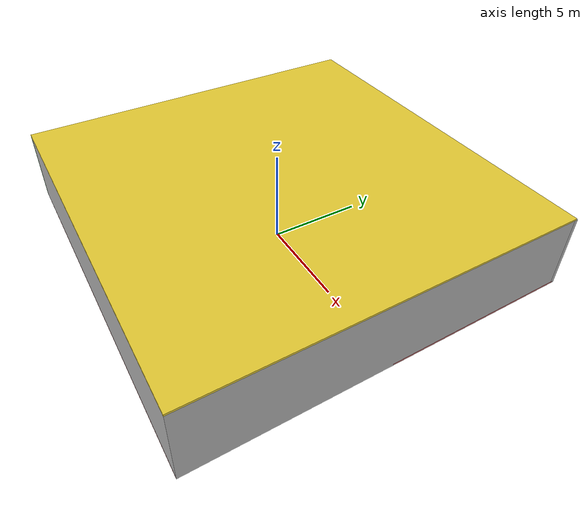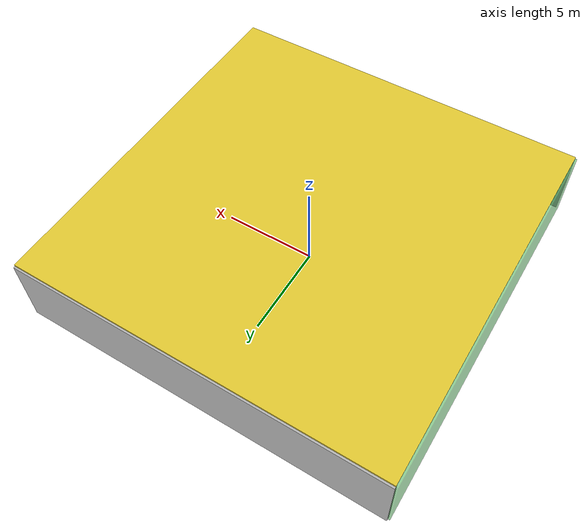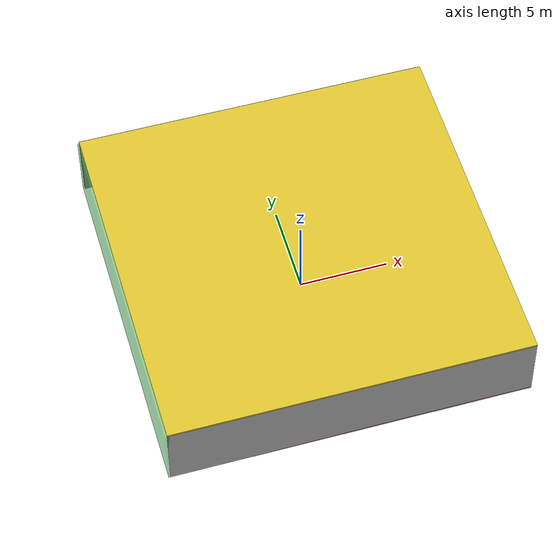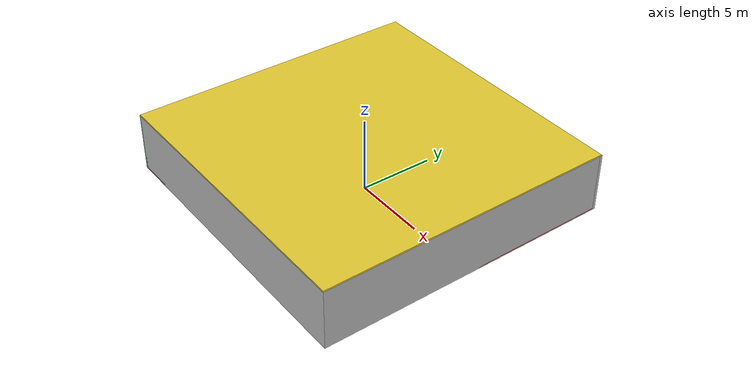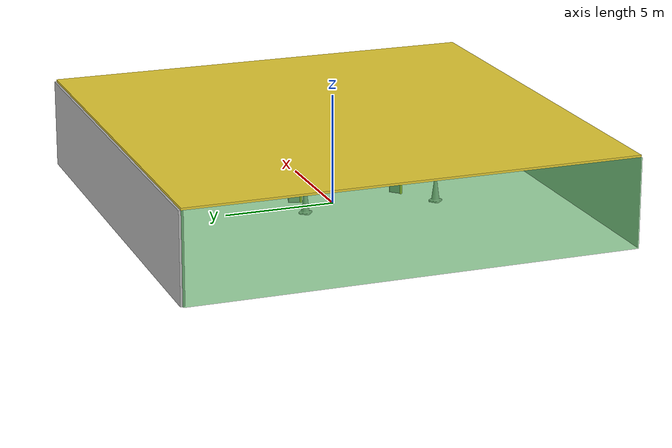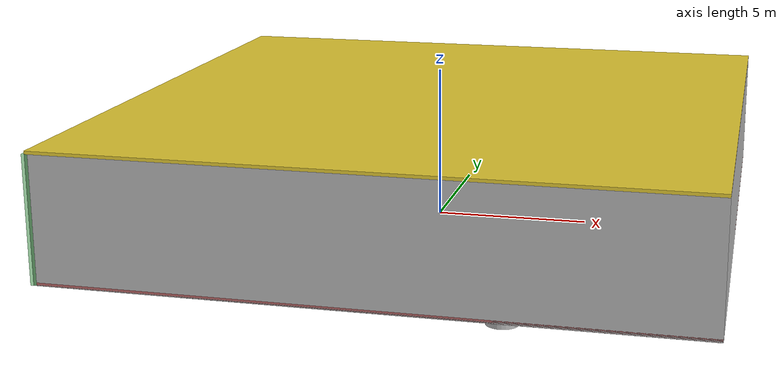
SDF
<sdf version="1.4">
 <world name="default">
  <physics type="ode">
   <max_step_size>0.001</max_step_size>
   <real_time_factor>1</real_time_factor>
   <real_time_update_rate>1000</real_time_update_rate>
   <gravity>0 0 -9.8</gravity>
  </physics>
  <scene><ambient>0.4 0.4 0.4 1</ambient><background>0.7 0.7 0.7 1</background><shadows>1</shadows></scene>
  <model name="Surrounding">
   <static>1</static>
   <link name="Ceiling">
    <collision name="Ceiling_Collision"><geometry><box><size>20 20 0.1</size></box></geometry></collision>
    <visual name="Ceiling_Visual">
     <geometry><box><size>20 20 0.1</size></box></geometry>
     <material>
      <script><uri>file://media/materials/scripts/gazebo.material</uri><name>Gazebo/ZincYellow</name></script>
     </material>
    </visual>
    <pose>0 0 4.05 0 0 0</pose>
   </link>
   <link name="Wall_South">
    <collision name="Wall_South_Collision">
     <geometry><box><size>20 0 4</size></box></geometry>
     <pose>0 0 2 0 -0 0</pose>
    </collision>
    <visual name="Wall_South_Visual">
     <pose>0 0 2 0 -0 0</pose>
     <geometry><box><size>20 0 4</size></box></geometry>
     <material>
      <script><uri>file://media/materials/scripts/gazebo.material</uri><name>Gazebo/JointAnchor</name></script>
     </material>
    </visual>
    <velocity_decay><linear>0</linear><angular>0</angular></velocity_decay>
    <pose>0 -10 0 0 -0 0</pose>
   </link>
   <link name="Wall_East">
    <collision name="Wall_21_Collision">
     <geometry><box><size>20 0 4</size></box></geometry>
     <pose>0 0 2 0 -0 0</pose>
    </collision>
    <visual name="Wall_21_Visual">
     <pose>0 0 2 0 -0 0</pose>
     <geometry><box><size>20 0 4</size></box></geometry>
     <material>
      <script><uri>file://media/materials/scripts/gazebo.material</uri><name>Gazebo/PioneerBody</name></script>
     </material>
    </visual>
    <velocity_decay><linear>0</linear><angular>0</angular></velocity_decay>
    <pose>10 0 0 0 -0 1.5708</pose>
   </link>
   <link name="Wall_North">
    <collision name="Wall_22_Collision">
     <geometry><box><size>20 0.2 4</size></box></geometry>
     <pose>0 0 2 0 -0 0</pose>
    </collision>
    <visual name="Wall_22_Visual">
     <pose>0 0 2 0 -0 0</pose>
     <geometry><box><size>20 0.2 4</size></box></geometry>
     <material>
      <script><uri>file://media/materials/scripts/gazebo.material</uri><name>Gazebo/PioneerBody</name></script>
     </material>
    </visual>
    <velocity_decay><linear>0</linear><angular>0</angular></velocity_decay>
    <pose>0 10 0 0 -0 0</pose>
   </link>
   <link name="Wall_West">
    <collision name="Wall_23_Collision">
     <geometry><box><size>20 0.2 4</size></box></geometry>
     <pose>0 0 2 0 -0 0</pose>
    </collision>
    <visual name="Wall_23_Visual">
     <pose>0 0 2 0 -0 0</pose>
     <geometry><box><size>20 0.2 4</size></box></geometry>
     <material>
      <script><uri>file://media/materials/scripts/gazebo.material</uri><name>Gazebo/GreenTransparent</name></script>
     </material>
    </visual>
    <velocity_decay><linear>0</linear><angular>0</angular></velocity_decay>
    <pose>-10 0 0 0 0 -1.5708</pose>
   </link>
   <link name="Ground_link">
    <collision name="collision">
     <pose>0 0 .05 0 -0 0</pose>
     <geometry><box><size>20 20 0.1</size></box></geometry>
    </collision>
    <visual name="visual">
     <pose>0 0 .05 0 -0 0</pose>
     <geometry><box><size>20 20 0.1</size></box></geometry>
     <material>
      <script><uri>file://media/materials/scripts/gazebo.material</uri><name>Gazebo/RedTransparent</name></script>
     </material>
    </visual>
   </link>
   <static>1</static>
  </model>
  <spherical_coordinates>
   <surface_model>EARTH_WGS84</surface_model>
   <latitude_deg>0</latitude_deg>
   <longitude_deg>0</longitude_deg>
   <elevation>0</elevation>
   <heading_deg>0</heading_deg>
  </spherical_coordinates>
  <light name="lightball_0" type="diffuse">
   <diffuse>0.8 0.8 0.8 1</diffuse>
   <specular>0.2 0.2 0.2 1</specular>
   <attenuation>
    <range>100</range>
    <constant>0.7</constant>
    <linear>0.01</linear>
    <quadratic>0.001</quadratic>
   </attenuation>
   <direction>-0.5 0.1 -0.9</direction>
   <pose>-5.8012607363 6.76684635021 0.711833221174 0 0 0</pose>
  </light>
  <light name="lightball_1" type="diffuse">
   <diffuse>0.8 0.8 0.8 1</diffuse>
   <specular>0.2 0.2 0.2 1</specular>
   <attenuation>
    <range>100</range>
    <constant>0.7</constant>
    <linear>0.01</linear>
    <quadratic>0.001</quadratic>
   </attenuation>
   <direction>-0.5 0.1 -0.9</direction>
   <pose>4.11903974667 -6.34179652559 2.89071353748 0 0 0</pose>
  </light>
  <light name="lightball_2" type="diffuse">
   <diffuse>0.8 0.8 0.8 1</diffuse>
   <specular>0.2 0.2 0.2 1</specular>
   <attenuation>
    <range>100</range>
    <constant>0.7</constant>
    <linear>0.01</linear>
    <quadratic>0.001</quadratic>
   </attenuation>
   <direction>-0.5 0.1 -0.9</direction>
   <pose>8.26187355387 2.47714791664 3.60981843805 0 0 0</pose>
  </light>
  <light name="lightball_3" type="diffuse">
   <diffuse>0.8 0.8 0.8 1</diffuse>
   <specular>0.2 0.2 0.2 1</specular>
   <attenuation>
    <range>100</range>
    <constant>0.7</constant>
    <linear>0.01</linear>
    <quadratic>0.001</quadratic>
   </attenuation>
   <direction>-0.5 0.1 -0.9</direction>
   <pose>-2.24529765465 -3.14362798498 3.89167608404 0 0 0</pose>
  </light>
  <light name="lightball_4" type="diffuse">
   <diffuse>0.8 0.8 0.8 1</diffuse>
   <specular>0.2 0.2 0.2 1</specular>
   <attenuation>
    <range>100</range>
    <constant>0.7</constant>
    <linear>0.01</linear>
    <quadratic>0.001</quadratic>
   </attenuation>
   <direction>-0.5 0.1 -0.9</direction>
   <pose>0.885902307666 -3.5061851876 3.87733231581 0 0 0</pose>
  </light>
  <light name="lightball_5" type="diffuse">
   <diffuse>0.8 0.8 0.8 1</diffuse>
   <specular>0.2 0.2 0.2 1</specular>
   <attenuation>
    <range>100</range>
    <constant>0.7</constant>
    <linear>0.01</linear>
    <quadratic>0.001</quadratic>
   </attenuation>
   <direction>-0.5 0.1 -0.9</direction>
   <pose>0.223325221154 -4.4441344882 2.92159914075 0 0 0</pose>
  </light>
  <light name="lightball_6" type="diffuse">
   <diffuse>0.8 0.8 0.8 1</diffuse>
   <specular>0.2 0.2 0.2 1</specular>
   <attenuation>
    <range>100</range>
    <constant>0.7</constant>
    <linear>0.01</linear>
    <quadratic>0.001</quadratic>
   </attenuation>
   <direction>-0.5 0.1 -0.9</direction>
   <pose>3.96549737641 3.55569616512 2.7577226224 0 0 0</pose>
  </light>
  <light name="lightball_7" type="diffuse">
   <diffuse>0.8 0.8 0.8 1</diffuse>
   <specular>0.2 0.2 0.2 1</specular>
   <attenuation>
    <range>100</range>
    <constant>0.7</constant>
    <linear>0.01</linear>
    <quadratic>0.001</quadratic>
   </attenuation>
   <direction>-0.5 0.1 -0.9</direction>
   <pose>-2.09282885622 7.75450114096 1.0287989871 0 0 0</pose>
  </light>
  <light name="lightball_8" type="diffuse">
   <diffuse>0.8 0.8 0.8 1</diffuse>
   <specular>0.2 0.2 0.2 1</specular>
   <attenuation>
    <range>100</range>
    <constant>0.7</constant>
    <linear>0.01</linear>
    <quadratic>0.001</quadratic>
   </attenuation>
   <direction>-0.5 0.1 -0.9</direction>
   <pose>-7.25247458186 -1.37988896118 2.45173343044 0 0 0</pose>
  </light>
  <light name="lightball_9" type="diffuse">
   <diffuse>0.8 0.8 0.8 1</diffuse>
   <specular>0.2 0.2 0.2 1</specular>
   <attenuation>
    <range>100</range>
    <constant>0.7</constant>
    <linear>0.01</linear>
    <quadratic>0.001</quadratic>
   </attenuation>
   <direction>-0.5 0.1 -0.9</direction>
   <pose>-5.93643751762 -6.35924033159 3.19075372529 0 0 0</pose>
  </light>
  <light name="lightball_10" type="diffuse">
   <diffuse>0.8 0.8 0.8 1</diffuse>
   <specular>0.2 0.2 0.2 1</specular>
   <attenuation>
    <range>100</range>
    <constant>0.7</constant>
    <linear>0.01</linear>
    <quadratic>0.001</quadratic>
   </attenuation>
   <direction>-0.5 0.1 -0.9</direction>
   <pose>2.11029082181 9.42134847024 1.2789608961 0 0 0</pose>
  </light>
  <light name="lightball_11" type="diffuse">
   <diffuse>0.8 0.8 0.8 1</diffuse>
   <specular>0.2 0.2 0.2 1</specular>
   <attenuation>
    <range>100</range>
    <constant>0.7</constant>
    <linear>0.01</linear>
    <quadratic>0.001</quadratic>
   </attenuation>
   <direction>-0.5 0.1 -0.9</direction>
   <pose>2.18777788532 -5.95784777599 2.05386007776 0 0 0</pose>
  </light>
  <include>
   <uri>model://construction_cone</uri>
   <pose>-1.27760457091 -4.41332076434 0 0 0 0.71852514767</pose>
  </include>
  <include>
   <uri>model://construction_cone</uri>
   <pose>-0.836708050614 1.59850509366 0 0 0 0.890882057641</pose>
  </include>
  <include>
   <uri>model://robocup_3Dsim_goal</uri>
   <pose>0.975537099871 -4.11057085381 0 0 0 0.77883550249</pose>
  </include>
  <include>
   <uri>model://robocup_3Dsim_goal</uri>
   <pose>1.64497877555 0.972723604197 0 0 0 1.26990484713</pose>
  </include>
  <include>
   <uri>model://textured_shapes</uri>
   <pose>4.71295988808 -7.42676709462 0 0 0 2.49164406568</pose>
  </include>
  <include><uri>model://table</uri><pose>4.45818595914 -3.76984742693 0 0 0 3.08049180076</pose></include>
  <include><uri>model://cabinet</uri><pose>4.13451392382 4.8177806869 0 0 0 1.19808220663</pose></include>
  <include><uri>model://table</uri><pose>4.1800069352 7.72689526639 0 0 0 1.07875449542</pose></include>
 </world>
</sdf>

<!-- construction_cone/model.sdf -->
<sdf version="1.5">
  <model name="Construction Cone">
    <link name="link">
      <collision name="collision">
        <geometry>
          <mesh>
            <scale>10 10 10</scale>
            <uri>file://isr-testbed/construction_cone/meshes/construction_cone.dae</uri>
          </mesh>
        </geometry>
      </collision>
      <visual name="visual">
        <geometry>
          <mesh>
            <scale>10 10 10</scale>
            <uri>file://isr-testbed/construction_cone/meshes/construction_cone.dae</uri>
          </mesh>
        </geometry>
      </visual>
    </link>
  </model>
</sdf>

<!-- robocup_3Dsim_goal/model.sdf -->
<sdf version="1.5">
  <model name="robocup_3d_goal">
    <static>true</static>
    <link name="left_post">
      <pose>0 1.05 0.45 0 0 0</pose>
      <collision name="collision">
        <geometry>
          <cylinder>
            <radius>0.05</radius>
            <length>0.9</length>
          </cylinder>
        </geometry>
      </collision>
      <visual name="visual">
        <geometry>
          <cylinder>
            <radius>0.05</radius>
            <length>0.9</length>
          </cylinder>
        </geometry>
        <material>
          <script>
            <uri>file://media/materials/scripts/gazebo.material</uri>
            <name>Gazebo/ZincYellow</name>
          </script>
        </material>
      </visual>
    </link>
    <link name="left_support_horiz_lower">
      <pose>0.30 1.05 0.01 0 0 0</pose>
      <collision name="collision">
        <geometry>
          <box>
            <size>0.50 0.02 0.02</size>
          </box>
        </geometry>
      </collision>
      <visual name="visual">
        <geometry>
          <box>
            <size>0.50 0.02 0.02</size>
          </box>
        </geometry>
        <material>
          <script>
            <uri>file://media/materials/scripts/gazebo.material</uri>
            <name>Gazebo/White</name>
          </script>
        </material>
      </visual>
    </link>
    <link name="left_support_horiz_upper">
      <pose>0.30 1.05 0.79 0 0 0</pose>
      <collision name="collision">
        <geometry>
          <box>
            <size>0.50 0.02 0.02</size>
          </box>
        </geometry>
      </collision>
      <visual name="visual">
        <geometry>
          <box>
            <size>0.50 0.02 0.02</size>
          </box>
        </geometry>
        <material>
          <script>
            <uri>file://media/materials/scripts/gazebo.material</uri>
            <name>Gazebo/White</name>
          </script>
        </material>
      </visual>
    </link>
    <link name="left_support_vertical">
      <pose>0.56 1.05 0.4 0 1.5708 0</pose>
      <collision name="collision">
        <geometry>
          <box>
            <size>0.80 0.02 0.02</size>
          </box>
        </geometry>
      </collision>
      <visual name="visual">
        <geometry>
          <box>
            <size>0.80 0.02 0.02</size>
          </box>
        </geometry>
        <material>
          <script>
            <uri>file://media/materials/scripts/gazebo.material</uri>
            <name>Gazebo/White</name>
          </script>
        </material>
      </visual>
    </link>
    <link name="right_support_horiz_lower">
      <pose>0.30 -1.05 0.01 0 0 0</pose>
      <collision name="collision">
        <geometry>
          <box>
            <size>0.50 0.02 0.02</size>
          </box>
        </geometry>
      </collision>
      <visual name="visual">
        <geometry>
          <box>
            <size>0.50 0.02 0.02</size>
          </box>
        </geometry>
        <material>
          <script>
            <uri>file://media/materials/scripts/gazebo.material</uri>
            <name>Gazebo/White</name>
          </script>
        </material>
      </visual>
    </link>
    <link name="right_support_horiz_upper">
      <pose>0.30 -1.05 0.79 0 0 0</pose>
      <collision name="collision">
        <geometry>
          <box>
            <size>0.50 0.02 0.02</size>
          </box>
        </geometry>
      </collision>
      <visual name="visual">
        <geometry>
          <box>
            <size>0.50 0.02 0.02</size>
          </box>
        </geometry>
        <material>
          <script>
            <uri>file://media/materials/scripts/gazebo.material</uri>
            <name>Gazebo/White</name>
          </script>
        </material>
      </visual>
    </link>
    <link name="right_support_vertical">
      <pose>0.56 -1.05 0.4 0 1.5708 0</pose>
      <collision name="collision">
        <geometry>
          <box>
            <size>0.80 0.02 0.02</size>
          </box>
        </geometry>
      </collision>
      <visual name="visual">
        <geometry>
          <box>
            <size>0.80 0.02 0.02</size>
          </box>
        </geometry>
        <material>
          <script>
            <uri>file://media/materials/scripts/gazebo.material</uri>
            <name>Gazebo/White</name>
          </script>
        </material>
      </visual>
    </link>
    <link name="center_support_horiz_lower">
      <pose>0.56 0 0.01 0 1.5708 0</pose>
      <collision name="collision">
        <geometry>
          <box>
            <size>0.02 2.08 0.02</size>
          </box>
        </geometry>
      </collision>
      <visual name="visual">
        <geometry>
          <box>
            <size>0.02 2.08 0.02</size>
          </box>
        </geometry>
        <material>
          <script>
            <uri>file://media/materials/scripts/gazebo.material</uri>
            <name>Gazebo/White</name>
          </script>
        </material>
      </visual>
    </link>
    <link name="center_support_horiz_upper">
      <pose>0.56 0 0.79 0 1.5708 0</pose>
      <collision name="collision">
        <geometry>
          <box>
            <size>0.02 2.08 0.02</size>
          </box>
        </geometry>
      </collision>
      <visual name="visual">
        <geometry>
          <box>
            <size>0.02 2.08 0.02</size>
          </box>
        </geometry>
        <material>
          <script>
            <uri>file://media/materials/scripts/gazebo.material</uri>
            <name>Gazebo/White</name>
          </script>
        </material>
      </visual>
    </link>
    <link name="right_post">
      <pose>0 -1.05 0.45 0 0 0</pose>
      <collision name="collision">
        <geometry>
          <cylinder>
            <radius>0.05</radius>
            <length>0.9</length>
          </cylinder>
        </geometry>
      </collision>
      <visual name="visual">
        <geometry>
          <cylinder>
            <radius>0.05</radius>
            <length>0.9</length>
          </cylinder>
        </geometry>
        <material>
          <script>
            <uri>file://media/materials/scripts/gazebo.material</uri>
            <name>Gazebo/ZincYellow</name>
          </script>
        </material>
      </visual>
    </link>
    <link name="crossbar">
      <pose>0 0 0.85 1.57 1.57 0</pose>
      <collision name="collision">
        <geometry>
          <cylinder>
            <radius>0.05</radius>
            <length>2.0</length>
          </cylinder>
        </geometry>
      </collision>
      <visual name="visual">
        <geometry>
          <cylinder>
            <radius>0.05</radius>
            <length>2.0</length>
          </cylinder>
        </geometry>
        <material>
          <script>
            <uri>file://media/materials/scripts/gazebo.material</uri>
            <name>Gazebo/ZincYellow</name>
          </script>
        </material>
      </visual>
    </link>
    <link name="center_net">
      <pose>0.56 0 0.40 0 0 0</pose>
      <collision name="collision">
        <geometry>
          <box>
            <size>0.01 2.1 0.80</size>
          </box>
        </geometry>
      </collision>
      <visual name="visual">
        <geometry>
          <box>
            <size>0.01 2.1 0.80</size>
          </box>
        </geometry>
        <material>
          <script>
            <uri>model://../model_source/models/robocup09_spl_field/materials/scripts/</uri>
            <uri>model://../model_source/models/robocup09_spl_field/materials/textures/</uri>
            <name>RoboCup/Net</name>
          </script>
        </material>
      </visual>
    </link>
    <link name="left_net">
      <pose>0.30 1.05 0.40 0 0 0</pose>
      <collision name="collision">
        <geometry>
          <box>
            <size>0.50 0.01 0.76</size>
          </box>
        </geometry>
      </collision>
      <visual name="visual">
        <geometry>
          <box>
            <size>0.50 0.01 0.76</size>
          </box>
        </geometry>
        <material>
          <script>
            <uri>model://../model_source/models/robocup09_spl_field/materials/scripts/</uri>
            <uri>model://../model_source/models/robocup09_spl_field/materials/textures/</uri>
            <name>RoboCup/Net</name>
          </script>
        </material>
      </visual>
    </link>
    <link name="right_net">
      <pose>0.30 -1.05 0.40 0 0 0</pose>
      <collision name="collision">
        <geometry>
          <box>
            <size>0.50 0.01 0.76</size>
          </box>
        </geometry>
      </collision>
      <visual name="visual">
        <geometry>
          <box>
            <size>0.50 0.01 0.76</size>
          </box>
        </geometry>
        <material>
          <script>
            <uri>model://../model_source/models/robocup09_spl_field/materials/scripts/</uri>
            <uri>model://../model_source/models/robocup09_spl_field/materials/textures/</uri>
            <name>RoboCup/Net</name>
          </script>
        </material>
      </visual>
    </link>
  </model>
</sdf>

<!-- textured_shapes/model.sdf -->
<sdf version="1.6">
  <model name="textured_shapes">
    <pose>0 0 0.5 0 0 0</pose>
    <link name="box">
      <pose>0 -1.5 0 0 0 0</pose>
      <collision name="collision">
        <geometry>
          <box>
            <size>1 1 1</size>
          </box>
        </geometry>
      </collision>
      <visual name="visual">
        <geometry>
          <box>
            <size>1 1 1</size>
          </box>
        </geometry>
        <material>
          <script>
            <uri>model://../model_source/models/textured_shapes/materials/scripts</uri>
            <uri>model://../model_source/models/textured_shapes/materials/textures</uri>
            <name>TexturedShape/Squares</name>
          </script>
        </material>
      </visual>
    </link>
    <link name="sphere">
      <collision name="collision">
        <geometry>
          <sphere>
            <radius>0.5</radius>
          </sphere>
        </geometry>
      </collision>
      <visual name="visual">
        <geometry>
          <sphere>
            <radius>0.5</radius>
          </sphere>
        </geometry>
        <material>
          <script>
            <uri>model://../model_source/models/textured_shapes/materials/scripts</uri>
            <uri>model://../model_source/models/textured_shapes/materials/textures</uri>
            <name>TexturedShape/Squares</name>
          </script>
        </material>
      </visual>
    </link>
    <link name="cylinder">
      <pose>0 1.5 0 0 0 0</pose>
      <collision name="collision">
        <geometry>
          <cylinder>
            <radius>0.5</radius>
            <length>1</length>
          </cylinder>
        </geometry>
      </collision>
      <visual name="visual">
        <geometry>
          <cylinder>
            <radius>0.5</radius>
            <length>1</length>
          </cylinder>
        </geometry>
        <material>
          <script>
            <uri>model://../model_source/models/textured_shapes/materials/scripts</uri>
            <uri>model://../model_source/models/textured_shapes/materials/textures</uri>
            <name>TexturedShape/Squares</name>
          </script>
        </material>
      </visual>
    </link>
  </model>
</sdf>

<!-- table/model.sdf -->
<sdf version="1.5">
  <model name="table">
    <static>true</static>
    <link name="link">
      <collision name="surface">
        <pose>0 0 1.0 0 0 0</pose>
        <geometry>
          <box>
            <size>1.5 0.8 0.03</size>
          </box>
        </geometry>
        <surface>
          <friction>
            <ode>
              <mu>0.6</mu>
              <mu2>0.6</mu2>
            </ode>
          </friction>
        </surface>
      </collision>
      <visual name="visual1">
        <pose>0 0 1.0 0 0 0</pose>
        <geometry>
          <box>
            <size>1.5 0.8 0.03</size>
          </box>
        </geometry>
        <material>
          <script>
            <uri>model://media/materials/scripts/gazebo.material</uri>
            <name>Gazebo/Wood</name>
          </script>
        </material>
      </visual>
      <collision name="front_left_leg">
        <pose>0.68 0.38 0.5 0 0 0</pose>
        <geometry>
          <cylinder>
            <radius>0.02</radius>
            <length>1.0</length>
          </cylinder>
        </geometry>
      </collision>
      <visual name="front_left_leg">
        <pose>0.68 0.38 0.5 0 0 0</pose>
        <geometry>
          <cylinder>
            <radius>0.02</radius>
            <length>1.0</length>
          </cylinder>
        </geometry>
        <material>
          <script>
            <uri>model://media/materials/scripts/gazebo.material</uri>
            <name>Gazebo/Grey</name>
          </script>
        </material>
      </visual>
      <collision name="front_right_leg">
        <pose>0.68 -0.38 0.5 0 0 0</pose>
        <geometry>
          <cylinder>
            <radius>0.02</radius>
            <length>1.0</length>
          </cylinder>
        </geometry>
      </collision>
      <visual name="front_right_leg">
        <pose>0.68 -0.38 0.5 0 0 0</pose>
        <geometry>
          <cylinder>
            <radius>0.02</radius>
            <length>1.0</length>
          </cylinder>
        </geometry>
        <material>
          <script>
            <uri>model://media/materials/scripts/gazebo.material</uri>
            <name>Gazebo/Grey</name>
          </script>
        </material>
      </visual>
      <collision name="back_right_leg">
        <pose>-0.68 -0.38 0.5 0 0 0</pose>
        <geometry>
          <cylinder>
            <radius>0.02</radius>
            <length>1.0</length>
          </cylinder>
        </geometry>
      </collision>
      <visual name="back_right_leg">
        <pose>-0.68 -0.38 0.5 0 0 0</pose>
        <geometry>
          <cylinder>
            <radius>0.02</radius>
            <length>1.0</length>
          </cylinder>
        </geometry>
        <material>
          <script>
            <uri>model://media/materials/scripts/gazebo.material</uri>
            <name>Gazebo/Grey</name>
          </script>
        </material>
      </visual>
      <collision name="back_left_leg">
        <pose>-0.68 0.38 0.5 0 0 0</pose>
        <geometry>
          <cylinder>
            <radius>0.02</radius>
            <length>1.0</length>
          </cylinder>
        </geometry>
      </collision>
      <visual name="back_left_leg">
        <pose>-0.68 0.38 0.5 0 0 0</pose>
        <geometry>
          <cylinder>
            <radius>0.02</radius>
            <length>1.0</length>
          </cylinder>
        </geometry>
        <material>
          <script>
            <uri>model://media/materials/scripts/gazebo.material</uri>
            <name>Gazebo/Grey</name>
          </script>
        </material>
      </visual>
    </link>
  </model>
</sdf>

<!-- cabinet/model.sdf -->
<sdf version="1.5">
  <model name="cabinet">
    <static>true</static>
    <link name="cabinet_bottom_plate">
      <inertial>
        <pose>0 0 -1 0 0 0</pose>
        <inertia>
          <ixx>2.050000</ixx>
          <ixy>0</ixy>
          <ixz>0</ixz>
          <iyy>2.050000</iyy>
          <iyz>0</iyz>
          <izz>2.050000</izz>
        </inertia>
        <mass>25.000000</mass>
      </inertial>
      <collision name="cabinet_bottom_plate_geom">
        <pose>0 0 0.010000 0 0 0</pose>
        <geometry>
          <box>
            <size>0.450000 0.450000 0.020000</size>
          </box>
        </geometry>
      </collision>
      <visual name="cabinet_bottom_plate_geom_visual">
        <pose>0 0 0.010000 0 0 0</pose>
        <geometry>
          <box>
            <size>0.450000 0.450000 0.020000</size>
          </box>
        </geometry>
        <material>
          <script>
            <uri>model://media/materials/scripts/gazebo.material</uri>
            <name>Gazebo/Wood</name>
          </script>
        </material>
      </visual>
      <collision name="cabinet_bottom_plate_geom_cabinet_back_plate">
        <pose>0.235000 0 0.510000 0 0 0</pose>
        <geometry>
          <box>
            <size>0.020000 0.450000 1.020000</size>
          </box>
        </geometry>
      </collision>
      <visual name="cabinet_bottom_plate_geom_cabinet_back_plate_visual">
        <pose>0.235000 0 0.510000 0 0 0</pose>
        <geometry>
          <box>
            <size>0.020000 0.450000 1.020000</size>
          </box>
        </geometry>
        <material>
          <script>
            <uri>model://media/materials/scripts/gazebo.material</uri>
            <name>Gazebo/Wood</name>
          </script>
        </material>
      </visual>
      <collision name="cabinet_bottom_plate_geom_cabinet_left_plate">
        <pose>0 0.235000 0.510000 0 0 0</pose>
        <geometry>
          <box>
            <size>0.450000 0.020000 1.020000</size>
          </box>
        </geometry>
      </collision>
      <visual name="cabinet_bottom_plate_geom_cabinet_left_plate_visual">
        <pose>0 0.235000 0.510000 0 0 0</pose>
        <geometry>
          <box>
            <size>0.450000 0.020000 1.020000</size>
          </box>
        </geometry>
        <material>
          <script>
            <uri>model://media/materials/scripts/gazebo.material</uri>
            <name>Gazebo/Wood</name>
          </script>
        </material>
      </visual>
      <collision name="cabinet_bottom_plate_geom_cabinet_middle_plate">
        <pose>0 0 0.510000 0 0 0</pose>
        <geometry>
          <box>
            <size>0.450000 0.450000 0.020000</size>
          </box>
        </geometry>
      </collision>
      <visual name="cabinet_bottom_plate_geom_cabinet_middle_plate_visual">
        <pose>0 0 0.510000 0 0 0</pose>
        <geometry>
          <box>
            <size>0.450000 0.450000 0.020000</size>
          </box>
        </geometry>
        <material>
          <script>
            <uri>model://media/materials/scripts/gazebo.material</uri>
            <name>Gazebo/Wood</name>
          </script>
        </material>
      </visual>
      <collision name="cabinet_bottom_plate_geom_cabinet_right_plate">
        <pose>0 -0.235000 0.510000 0 0 0</pose>
        <geometry>
          <box>
            <size>0.450000 0.020000 1.020000</size>
          </box>
        </geometry>
      </collision>
      <visual name="cabinet_bottom_plate_geom_cabinet_right_plate_visual">
        <pose>0 -0.235000 0.510000 0 0 0</pose>
        <geometry>
          <box>
            <size>0.450000 0.020000 1.020000</size>
          </box>
        </geometry>
        <material>
          <script>
            <uri>model://media/materials/scripts/gazebo.material</uri>
            <name>Gazebo/Wood</name>
          </script>
        </material>
      </visual>
      <collision name="cabinet_bottom_plate_geom_cabinet_top_plate">
        <pose>0 0 1.010000 0 0 0</pose>
        <geometry>
          <box>
            <size>0.450000 0.450000 0.020000</size>
          </box>
        </geometry>
      </collision>
      <visual name="cabinet_bottom_plate_geom_cabinet_top_plate_visual">
        <pose>0 0 1.010000 0 0 0</pose>
        <geometry>
          <box>
            <size>0.450000 0.450000 0.020000</size>
          </box>
        </geometry>
        <material>
          <script>
            <uri>model://media/materials/scripts/gazebo.material</uri>
            <name>Gazebo/Wood</name>
          </script>
        </material>
      </visual>
    </link>
  </model>
</sdf>
